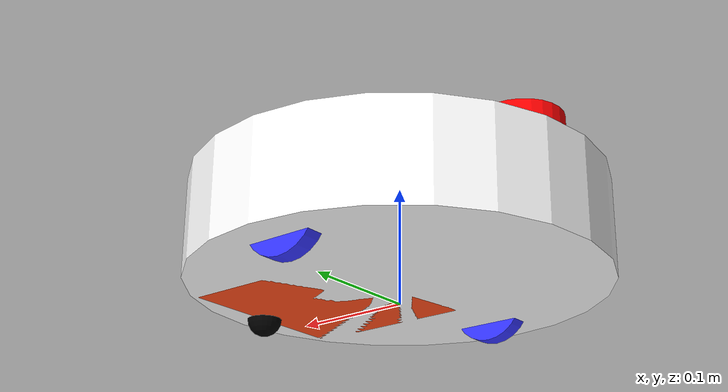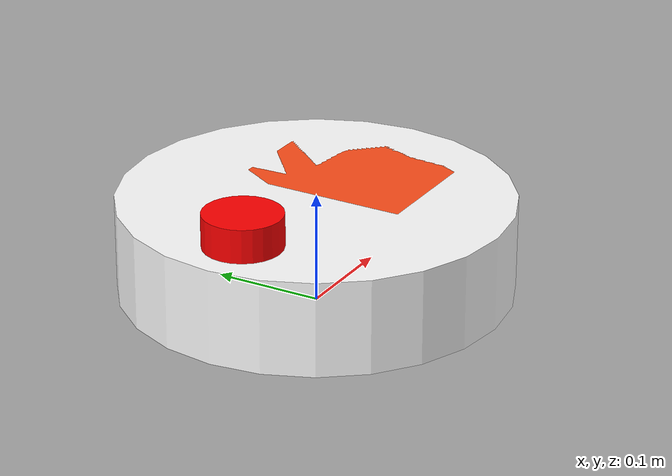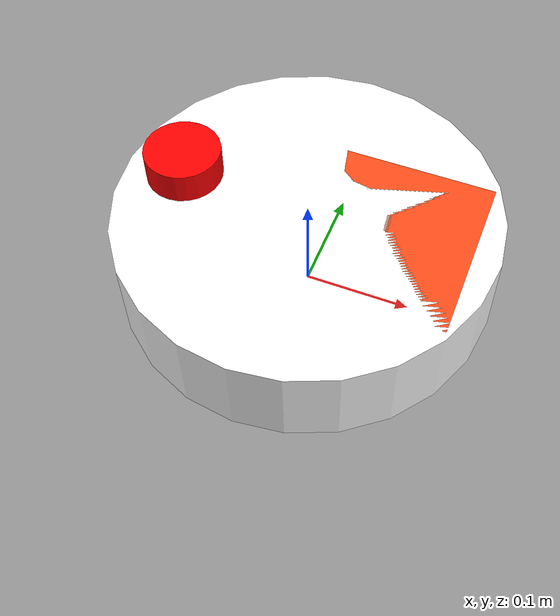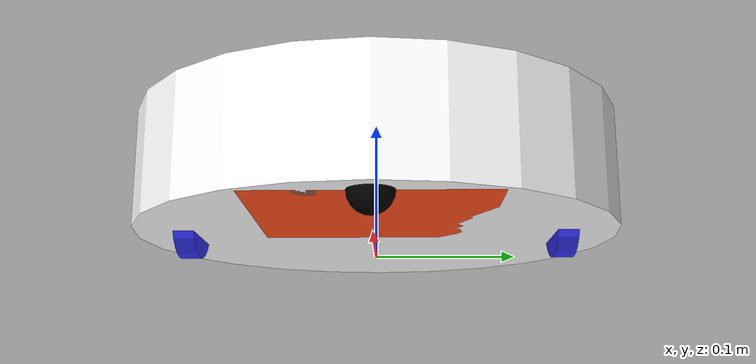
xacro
<?xml version="1.0"?>
<robot xmlns:xacro="http://www.ros.org/wiki/xacro" name="robot">

    <xacro:include filename="robot_core.xacro" />

    <xacro:include filename="lidar.xacro"/>

     <!-- Vid 1 ROS2_control -->
    <xacro:include filename="ros2_control.xacro"/>

</robot>

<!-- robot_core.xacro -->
<robot xmlns:xacro="http://www.ros.org/wiki/xacro" >

    <xacro:include filename="inertial_macros.xacro"/>

    <material name="white">
        <color rgba="1 1 1 1" />
    </material>
    <material name="orange">
        <color rgba="1 0.3 0.1 1" />
    </material>
    <material name="blue">
        <color rgba="0.2 0.2 1 1" />
    </material>
    <material name="black">
        <color rgba="0 0 0 1" />
    </material>
    <material name="red">
        <color rgba="1 0 0 1" />
    </material>

    <link name="base_footprint">
    </link>

    <!-- BASE  -->
    <joint name="base_joint" type="fixed">
        <parent link="base_footprint"/>
        <child link="base_link"/>
        <origin xyz="0 0 0.035" rpy="0 0 0"/>
    </joint>

    <link name="base_link">
    </link>

    <!-- CHASSIS ONE (CYLINDER) -->
    <joint name="chassis_one_joint" type="fixed">
        <parent link="base_link"/>
        <child link="chassis_one"/>
        <origin xyz="0 0 0.0225"/>
    </joint>

    <link name="chassis_one">
        <visual>
            <origin xyz="0 0 0"/>
            <geometry>
                <cylinder radius="0.175" length="0.085"/>
            </geometry>
            <material name="white"/>
        </visual>

        <collision>
            <origin xyz="0 0 0"/>
            <geometry>
                <cylinder radius="0.175" length="0.085"/>
            </geometry>
        </collision>

        <xacro:inertial_cylinder mass = "2.5" length="0.085" radius="0.175">
            <origin xyz="0 0 0" rpy="0 0 0"/>
        </xacro:inertial_cylinder>

    </link>

    <gazebo reference="chassis_one">
        <material>Gazebo/White</material>
    </gazebo>

    <!-- CHASSIS TWO (BOX) -->
    <joint name="chassis_two_joint" type="fixed">
        <parent link="base_link"/>
        <child link="chassis_two"/>
        <origin xyz="0 0 -0.02"/>
    </joint>

    <link name="chassis_two">
        <visual>
            <origin xyz="0.075 0 0.0425"/>
            <geometry>
                <box size="0.15 0.16 0.085"/>
            </geometry>
            <material name="orange"/>
        </visual>

        <collision>
            <origin xyz="0.075 0 0.0425"/>
            <geometry>
                <box size="0.15 0.16 0.085"/>
            </geometry>
        </collision>

        <xacro:inertial_box mass="1" x="0.15" y="0.16" z="0.085">
            <origin xyz="0.075 0 0.0425" rpy="0 0 0"/>
        </xacro:inertial_box>

    </link>

    <gazebo reference="chassis_two">
        <material>Gazebo/Orange</material>
    </gazebo>

    <!-- LEFT WHEEL -->
    <joint name="left_wheel_joint" type="continuous">
        <parent link="base_link"/>
        <child link="left_wheel"/>
        <origin xyz="0 0.1365 0" rpy="-${pi/2} 0 0"/>
        <axis xyz="0 0 1"/>
    </joint>

    <link name="left_wheel">
        <visual>
            <geometry>
                <cylinder radius="0.035" length="0.015"/>
            </geometry>
            <material name="blue"/>
        </visual>

        <collision>
            <geometry>
                <cylinder radius="0.035" length="0.015"/>
            </geometry>
        </collision>

        <xacro:inertial_cylinder mass = "0.1" length="0.015" radius="0.035">
            <origin xyz="0 0 0" rpy="0 0 0"/>
        </xacro:inertial_cylinder>

    </link>

    <gazebo reference="left_wheel">
        <material>Gazebo/Blue</material>
    </gazebo>

    <!-- RIGHT WHEEL -->
    <joint name="right_wheel_joint" type="continuous">
        <parent link="base_link"/>
        <child link="right_wheel"/>
        <origin xyz="0 -0.1365 0" rpy="${pi/2} 0 0"/>
        <axis xyz="0 0 -1"/>
    </joint>

    <link name="right_wheel">
        <visual>
            <geometry>
                <cylinder radius="0.035" length="0.015"/>
            </geometry>
            <material name="blue"/>
        </visual>

        <collision>
            <geometry>
                <cylinder radius="0.035" length="0.015"/>
            </geometry>
        </collision>

        <xacro:inertial_cylinder mass = "0.1" length="0.015" radius="0.035">
            <origin xyz="0 0 0" rpy="0 0 0"/>
        </xacro:inertial_cylinder>

    </link>

    <gazebo reference="right_wheel">
        <material>Gazebo/Blue</material>
    </gazebo>

    <!-- CASTER WHEEL -->
    <joint name="caster_wheel_joint" type="fixed">
        <parent link="chassis_two"/>
        <child link="caster_wheel"/>
        <origin xyz="0.15 0 0"/>
    </joint>

    <link name="caster_wheel">
        <visual>
            <geometry>
                <sphere radius="0.015"/>
            </geometry>
            <material name="black"/>
        </visual>

        <collision>
            <geometry>
                <sphere radius="0.015"/>
            </geometry>
        </collision>

        <xacro:inertial_sphere mass="0.1" radius="0.015">
            <origin xyz="0 0 0" rpy="0 0 0"/>
        </xacro:inertial_sphere>

    </link>

    <gazebo reference="caster_wheel">
        <material>Gazebo/Black</material>
        <mu1 value="0.001"/>
        <mu2 value="0.001"/>
    </gazebo>

</robot>

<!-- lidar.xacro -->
<robot xmlns:xacro="http://www.ros.org/wiki/xacro" >

    <joint name="lase_joint" type="fixed">
        <parent link="chassis_one"/>
        <child link="laser_frame"/>
        <!-- plus 0.02 m in z -->
        <!-- plus 0.01 m in z -->
        <origin xyz="-0.12 0 0.0525" rpy="0 0 0"/>
    </joint>

    <link name="laser_frame">
        <visual>
            <geometry>
                <cylinder radius="0.035" length="0.04"/>
            </geometry>
            <material name="red"/>
        </visual>
        <collision>
            <geometry>
                <cylinder radius="0.035" length="0.04"/>
            </geometry>
        </collision>
        <xacro:inertial_cylinder mass="0.1" length="0.04" radius="0.035">
            <origin xyz="0 0 0" rpy="0 0 0"/>
        </xacro:inertial_cylinder>
    </link>

    <gazebo reference="laser_frame">
        <material>Gazebo/Red</material>

        <sensor name="laser" type="ray">
            <pose> 0 0 0 0 0 0 </pose>
            <visualize>true</visualize>
            <update_rate>10</update_rate>
            <ray>
                <scan>
                    <horizontal>
                        <samples>360</samples>
                        <resolution>1</resolution>
                        <min_angle>-3.14</min_angle>
                        <max_angle>3.14</max_angle>
                    </horizontal>
                </scan>
                <range>
                    <min>0.3</min>
                    <max>12</max>
                    <resolution>0.01</resolution>
                </range>
            </ray>
            <plugin name="laser_controller" filename="libgazebo_ros_ray_sensor.so">
                <ros>
                    <argument>~/out:=scan</argument>
                </ros>
                <output_type>sensor_msgs/LaserScan</output_type>
                <frame_name>laser_frame</frame_name>
            </plugin>
        </sensor>
    </gazebo>

</robot>
